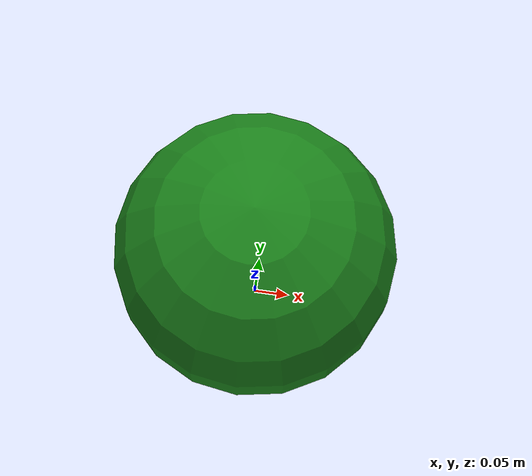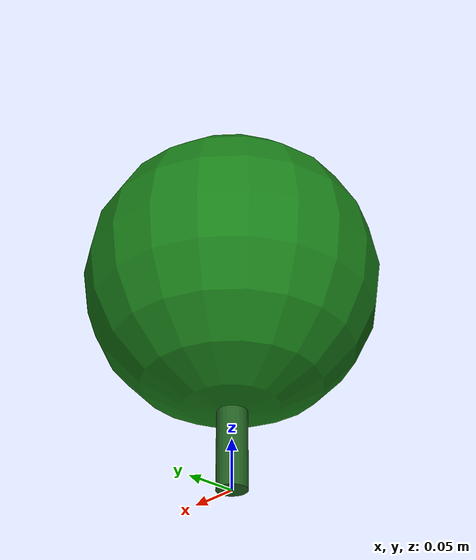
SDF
<?xml version="1.0"?>
<sdf version="1.9">
  <model name="tomato_plant_refined">
    <static>true</static>
    <link name="plant_link">

      <visual name="stem_visual">
        <pose>0 0 0.15 0 0 0</pose>
        <geometry>
          <cylinder>
            <radius>0.015</radius> <length>0.3</length>
          </cylinder>
        </geometry>
        <material>
          <ambient>0.13 0.37 0.13 1</ambient>
          <diffuse>0.13 0.37 0.13 1</diffuse>
        </material>
      </visual>

      <visual name="canopy_visual">
        <pose>0 0 0.225 0 0 0</pose>
        <geometry>
          <sphere>
            <radius>0.15</radius> </sphere>
        </geometry>
        <scale>1 1 1.5</scale>
        <material>
          <ambient>0.05 0.4 0.05 1</ambient>
          <diffuse>0.1 0.5 0.1 1</diffuse>
        </material>
      </visual>

      <visual name="fruit_1">
        <pose>0.1 0.05 0.25 0 0 0</pose>
        <geometry><sphere><radius>0.025</radius></sphere></geometry>
        <material>
          <ambient>0.8 0 0 1</ambient>
          <diffuse>0.8 0 0 1</diffuse>
        </material>
      </visual>

      <collision name="plant_collision">
        <pose>0 0 0.225 0 0 0</pose>
        <geometry>
          <cylinder>
            <radius>0.15</radius>
            <length>0.45</length>
          </cylinder>
        </geometry>
      </collision>

    </link>
  </model>
</sdf>
